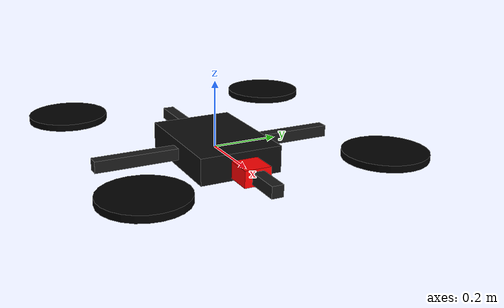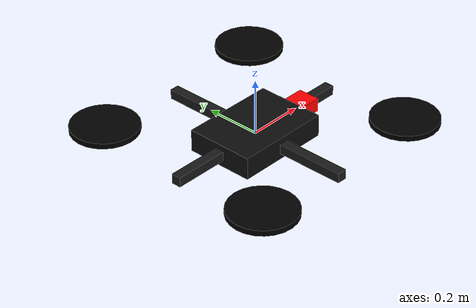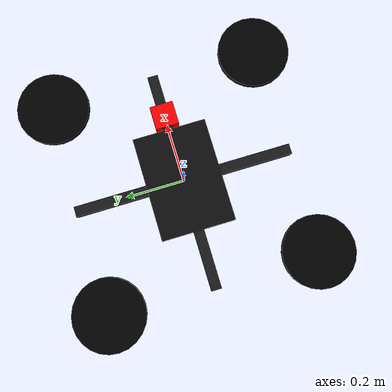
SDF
<?xml version="1.0"?>
<sdf version="1.9">
  <model name="simple_drone">
    <static>true</static>

    <link name="base_link">
      <visual name="body">
        <geometry>
          <box>
            <size>0.35 0.25 0.08</size>
          </box>
        </geometry>
        <material>
          <ambient>0.05 0.05 0.05 1</ambient>
          <diffuse>0.05 0.05 0.05 1</diffuse>
        </material>
      </visual>

      <visual name="front_marker">
        <pose>0.23 0 0 0 0 0</pose>
        <geometry>
          <box>
            <size>0.08 0.08 0.05</size>
          </box>
        </geometry>
        <material>
          <ambient>1 0 0 1</ambient>
          <diffuse>1 0 0 1</diffuse>
        </material>
      </visual>

      <visual name="arm_x">
        <geometry>
          <box>
            <size>0.75 0.035 0.035</size>
          </box>
        </geometry>
        <material>
          <ambient>0.1 0.1 0.1 1</ambient>
          <diffuse>0.1 0.1 0.1 1</diffuse>
        </material>
      </visual>

      <visual name="arm_y">
        <geometry>
          <box>
            <size>0.035 0.75 0.035</size>
          </box>
        </geometry>
        <material>
          <ambient>0.1 0.1 0.1 1</ambient>
          <diffuse>0.1 0.1 0.1 1</diffuse>
        </material>
      </visual>

      <visual name="rotor_1">
        <pose>0.35 0.35 0.04 0 0 0</pose>
        <geometry>
          <cylinder>
            <radius>0.12</radius>
            <length>0.02</length>
          </cylinder>
        </geometry>
        <material>
          <ambient>0 0 0 1</ambient>
          <diffuse>0 0 0 1</diffuse>
        </material>
      </visual>

      <visual name="rotor_2">
        <pose>0.35 -0.35 0.04 0 0 0</pose>
        <geometry>
          <cylinder>
            <radius>0.12</radius>
            <length>0.02</length>
          </cylinder>
        </geometry>
        <material>
          <ambient>0 0 0 1</ambient>
          <diffuse>0 0 0 1</diffuse>
        </material>
      </visual>

      <visual name="rotor_3">
        <pose>-0.35 0.35 0.04 0 0 0</pose>
        <geometry>
          <cylinder>
            <radius>0.12</radius>
            <length>0.02</length>
          </cylinder>
        </geometry>
        <material>
          <ambient>0 0 0 1</ambient>
          <diffuse>0 0 0 1</diffuse>
        </material>
      </visual>

      <visual name="rotor_4">
        <pose>-0.35 -0.35 0.04 0 0 0</pose>
        <geometry>
          <cylinder>
            <radius>0.12</radius>
            <length>0.02</length>
          </cylinder>
        </geometry>
        <material>
          <ambient>0 0 0 1</ambient>
          <diffuse>0 0 0 1</diffuse>
        </material>
      </visual>
    </link>
  </model>
</sdf>
